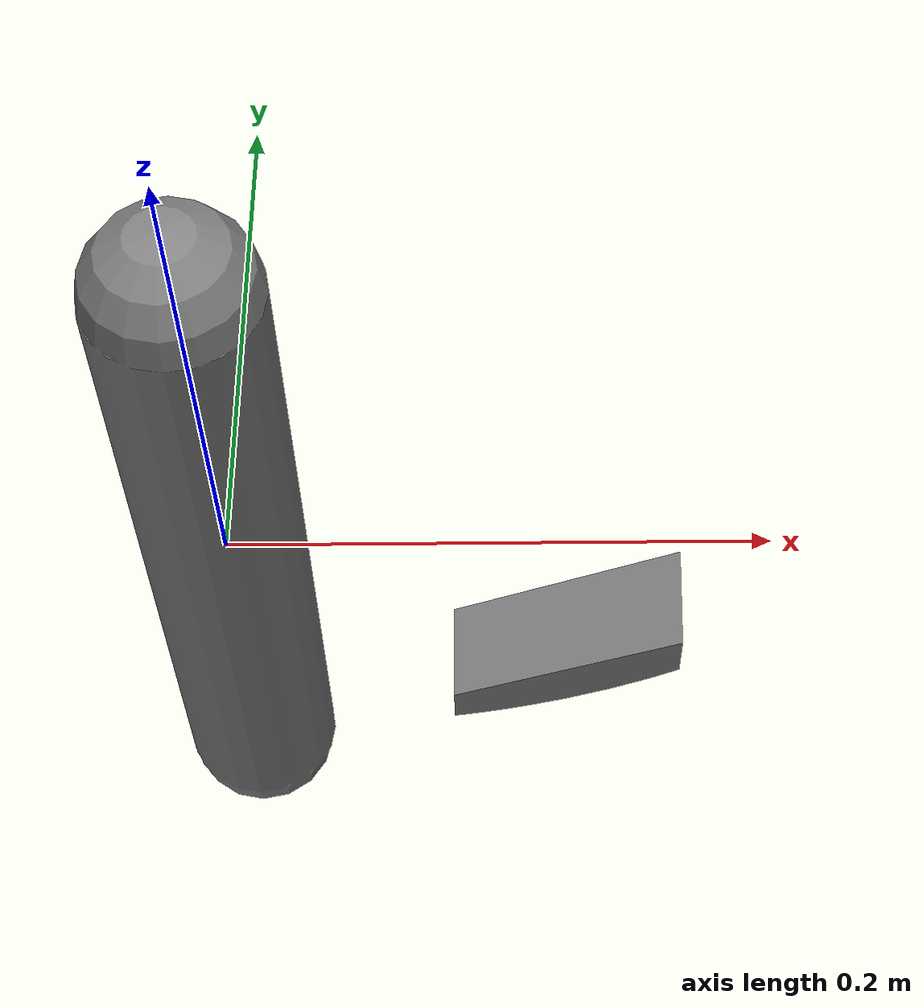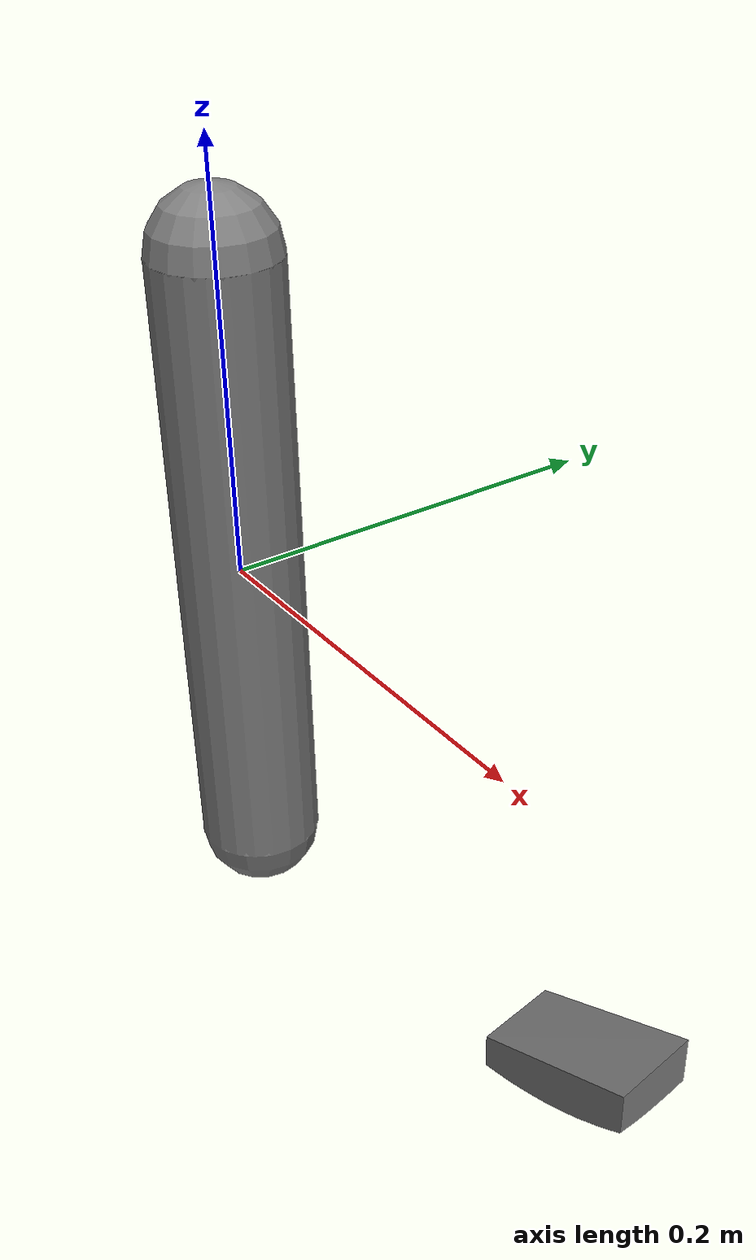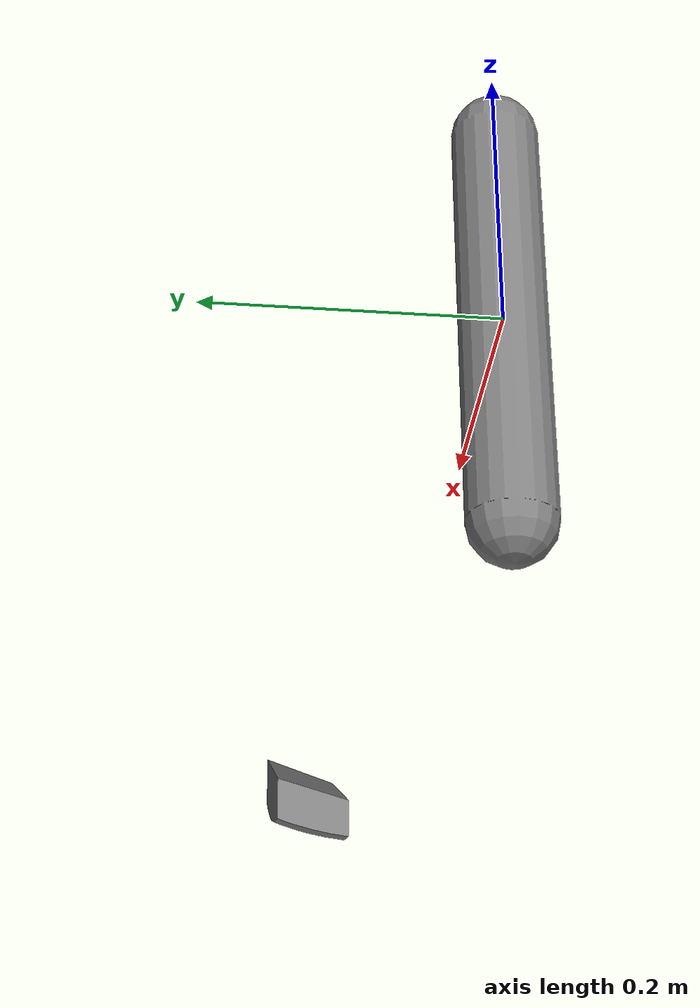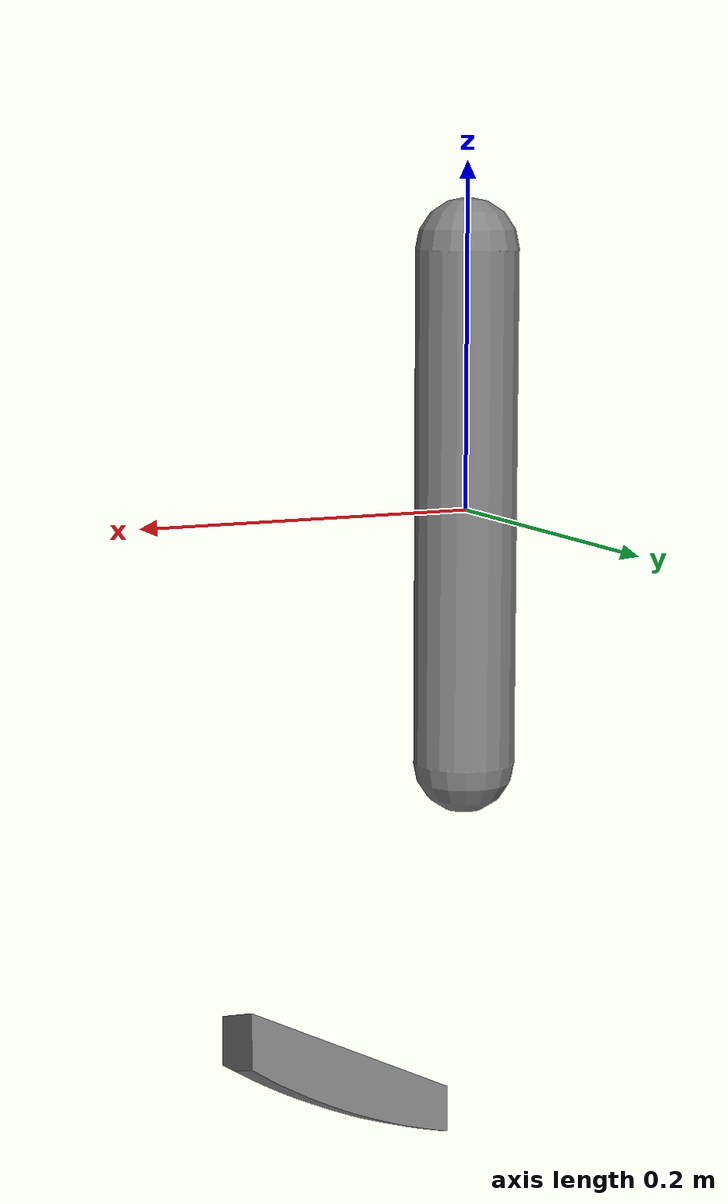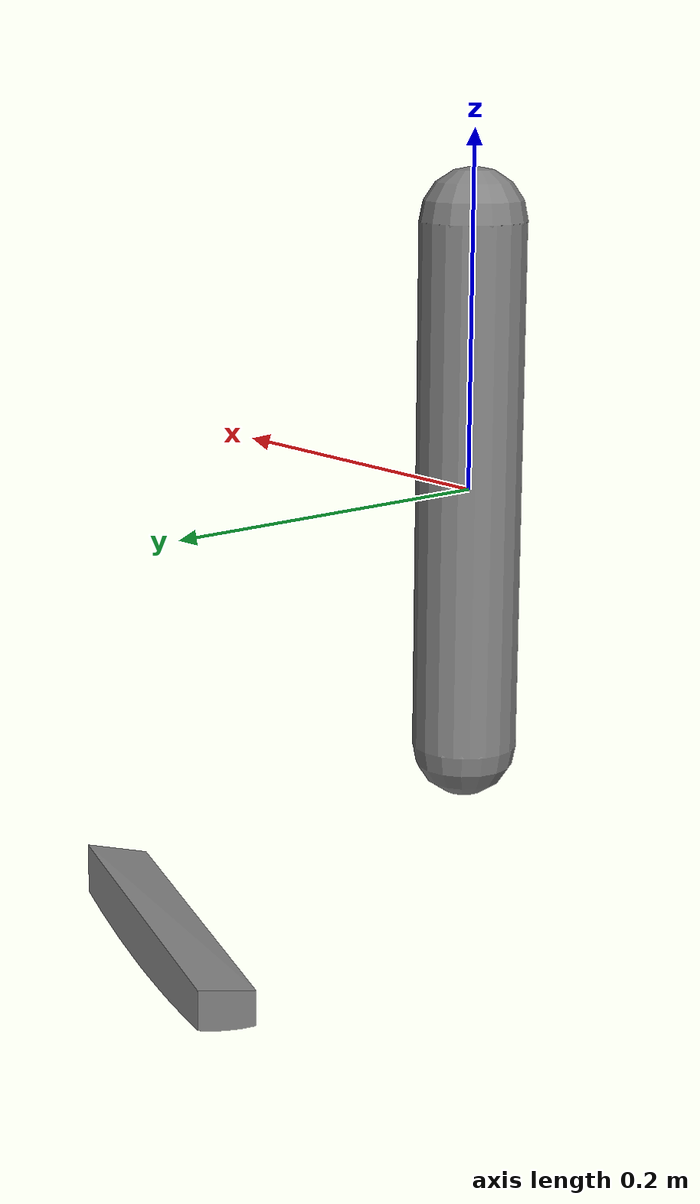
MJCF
<mujoco model="bug">
  <asset>
      <mesh name="bug_mesh" file="bug_mesh.obj"/>
  </asset>
  <worldbody>
    <body name="body1">
      <joint name="j1" type="free"/>
      <inertial mass="1" pos="0 0 0" fullinertia="1 1 1 0 0 0"/>
      <geom name="collision1" type="capsule" size="0.03 0.15"/>
    </body>

    <body name="body2">
        <joint name="j2" type="free"/>
        <geom name="collision2" type="mesh" mesh="bug_mesh"/>
    </body>
  </worldbody>
</mujoco>
